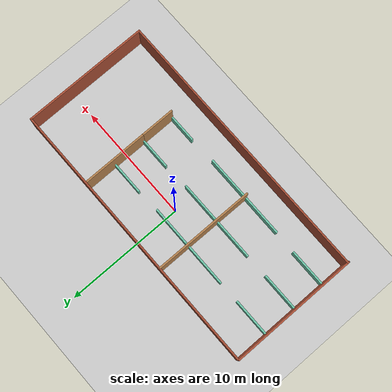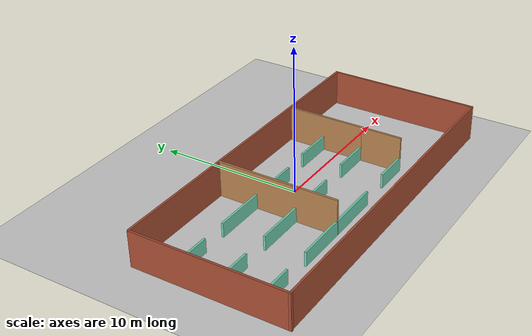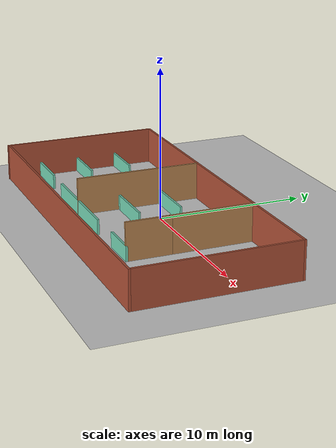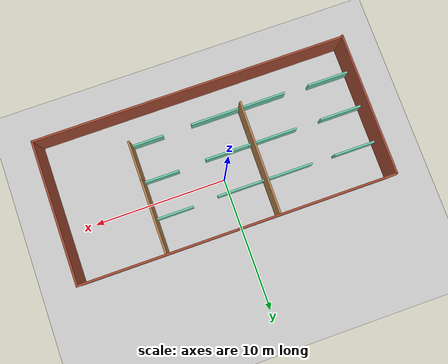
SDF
<sdf version="1.6">
 <world name="default">
  <model name="ground_plane">
   <static>1</static>
   <link name="link">
    <collision name="collision">
     <geometry><plane><normal>0 0 1</normal><size>100 100</size></plane></geometry>
     <surface><friction><ode><mu>100</mu><mu2>50</mu2></ode></friction></surface>
    </collision>
    <visual name="visual">
     <cast_shadows>0</cast_shadows>
     <geometry><plane><normal>0 0 1</normal><size>100 100</size></plane></geometry>
     <material>
      <script><uri>file://media/materials/scripts/gazebo.material</uri><name>Gazebo/Grey</name></script>
     </material>
    </visual>
   </link>
  </model>
  <model name="restaurants">
   <link name="Wall_17">
    <pose>5.31564 2.50892 0 0 -0 1.57072</pose>
    <visual name="Wall_17_Visual">
     <pose>0 0 1.25 0 -0 0</pose>
     <geometry><box><size>5.45915 0.15 2.5</size></box></geometry>
     <material>
      <script><uri>file://media/materials/scripts/gazebo.material</uri><name>Gazebo/Wood</name></script>
      <ambient>1 1 1 1</ambient>
      <shader type="pixel"/>
      <diffuse>1 1 1 1</diffuse>
      <specular>0.2 0.2 0.2 1</specular>
      <emissive>0 0 0 1</emissive>
     </material>
     <meta><layer>0</layer></meta>
    </visual>
    <collision name="Wall_17_Collision">
     <pose>0 0 1.25 0 -0 0</pose>
     <geometry><box><size>5.45915 0.15 2.5</size></box></geometry>
     <surface>
      <friction>
       <ode><mu>1</mu><mu2>1</mu2><fdir1>0 0 0</fdir1><slip1>0</slip1><slip2>0</slip2></ode>
       <torsional>
        <coefficient>1</coefficient>
        <patch_radius>0</patch_radius>
        <surface_radius>0</surface_radius>
        <use_patch_radius>1</use_patch_radius>
        <ode><slip>0</slip></ode>
       </torsional>
      </friction>
      <bounce><restitution_coefficient>0</restitution_coefficient><threshold>1e+06</threshold></bounce>
      <contact>
       <collide_without_contact>0</collide_without_contact>
       <collide_without_contact_bitmask>1</collide_without_contact_bitmask>
       <collide_bitmask>1</collide_bitmask>
       <ode>
        <soft_cfm>0</soft_cfm>
        <soft_erp>0.2</soft_erp>
        <kp>1e+13</kp>
        <kd>1</kd>
        <max_vel>0.01</max_vel>
        <min_depth>0</min_depth>
       </ode>
       <bullet>
        <split_impulse>1</split_impulse>
        <split_impulse_penetration_threshold>-0.01</split_impulse_penetration_threshold>
        <soft_cfm>0</soft_cfm>
        <soft_erp>0.2</soft_erp>
        <kp>1e+13</kp>
        <kd>1</kd>
       </bullet>
      </contact>
     </surface>
    </collision>
   </link>
   <link name="Wall_19">
    <pose>5.31545 -1.57066 0 0 0 -1.5708</pose>
    <visual name="Wall_19_Visual">
     <pose>0 0 1.25 0 -0 0</pose>
     <geometry><box><size>3 0.15 2.5</size></box></geometry>
     <material>
      <script><uri>file://media/materials/scripts/gazebo.material</uri><name>Gazebo/Wood</name></script>
      <ambient>1 1 1 1</ambient>
      <shader type="pixel"/>
      <diffuse>1 1 1 1</diffuse>
      <specular>0.2 0.2 0.2 1</specular>
      <emissive>0 0 0 1</emissive>
     </material>
     <meta><layer>0</layer></meta>
    </visual>
    <collision name="Wall_19_Collision">
     <pose>0 0 1.25 0 -0 0</pose>
     <geometry><box><size>3 0.15 2.5</size></box></geometry>
     <surface>
      <friction>
       <ode><mu>1</mu><mu2>1</mu2><fdir1>0 0 0</fdir1><slip1>0</slip1><slip2>0</slip2></ode>
       <torsional>
        <coefficient>1</coefficient>
        <patch_radius>0</patch_radius>
        <surface_radius>0</surface_radius>
        <use_patch_radius>1</use_patch_radius>
        <ode><slip>0</slip></ode>
       </torsional>
      </friction>
      <bounce><restitution_coefficient>0</restitution_coefficient><threshold>1e+06</threshold></bounce>
      <contact>
       <collide_without_contact>0</collide_without_contact>
       <collide_without_contact_bitmask>1</collide_without_contact_bitmask>
       <collide_bitmask>1</collide_bitmask>
       <ode>
        <soft_cfm>0</soft_cfm>
        <soft_erp>0.2</soft_erp>
        <kp>1e+13</kp>
        <kd>1</kd>
        <max_vel>0.01</max_vel>
        <min_depth>0</min_depth>
       </ode>
       <bullet>
        <split_impulse>1</split_impulse>
        <split_impulse_penetration_threshold>-0.01</split_impulse_penetration_threshold>
        <soft_cfm>0</soft_cfm>
        <soft_erp>0.2</soft_erp>
        <kp>1e+13</kp>
        <kd>1</kd>
       </bullet>
      </contact>
     </surface>
    </collision>
   </link>
   <link name="Wall_4">
    <pose>0.042334 5.32675 0 0 -0 0</pose>
    <visual name="Wall_4_Visual">
     <pose>0 0 1.25 0 -0 0</pose>
     <geometry><box><size>23.5 0.15 2.5</size></box></geometry>
     <material>
      <script><uri>file://media/materials/scripts/gazebo.material</uri><name>Gazebo/Bricks</name></script>
      <ambient>1 1 1 1</ambient>
      <shader type="pixel"/>
      <diffuse>1 1 1 1</diffuse>
      <specular>0.2 0.2 0.2 1</specular>
      <emissive>0 0 0 1</emissive>
     </material>
     <meta><layer>0</layer></meta>
    </visual>
    <collision name="Wall_4_Collision">
     <pose>0 0 1.25 0 -0 0</pose>
     <geometry><box><size>23.5 0.15 2.5</size></box></geometry>
     <surface>
      <friction>
       <ode><mu>1</mu><mu2>1</mu2><fdir1>0 0 0</fdir1><slip1>0</slip1><slip2>0</slip2></ode>
       <torsional>
        <coefficient>1</coefficient>
        <patch_radius>0</patch_radius>
        <surface_radius>0</surface_radius>
        <use_patch_radius>1</use_patch_radius>
        <ode><slip>0</slip></ode>
       </torsional>
      </friction>
      <bounce><restitution_coefficient>0</restitution_coefficient><threshold>1e+06</threshold></bounce>
      <contact>
       <collide_without_contact>0</collide_without_contact>
       <collide_without_contact_bitmask>1</collide_without_contact_bitmask>
       <collide_bitmask>1</collide_bitmask>
       <ode>
        <soft_cfm>0</soft_cfm>
        <soft_erp>0.2</soft_erp>
        <kp>1e+13</kp>
        <kd>1</kd>
        <max_vel>0.01</max_vel>
        <min_depth>0</min_depth>
       </ode>
       <bullet>
        <split_impulse>1</split_impulse>
        <split_impulse_penetration_threshold>-0.01</split_impulse_penetration_threshold>
        <soft_cfm>0</soft_cfm>
        <soft_erp>0.2</soft_erp>
        <kp>1e+13</kp>
        <kd>1</kd>
       </bullet>
      </contact>
     </surface>
    </collision>
   </link>
   <link name="Wall_48">
    <pose>-3.08222 1.07627 0 0 0 -1.57567</pose>
    <visual name="Wall_48_Visual">
     <pose>0 0 1.25 0 -0 0</pose>
     <geometry><box><size>8.5 0.15 2.5</size></box></geometry>
     <material>
      <script><uri>file://media/materials/scripts/gazebo.material</uri><name>Gazebo/Wood</name></script>
      <ambient>1 1 1 1</ambient>
      <shader type="pixel"/>
      <diffuse>1 1 1 1</diffuse>
      <specular>0.2 0.2 0.2 1</specular>
      <emissive>0 0 0 1</emissive>
     </material>
     <meta><layer>0</layer></meta>
    </visual>
    <collision name="Wall_48_Collision">
     <pose>0 0 1.25 0 -0 0</pose>
     <geometry><box><size>8.5 0.15 2.5</size></box></geometry>
     <surface>
      <friction>
       <ode><mu>1</mu><mu2>1</mu2><fdir1>0 0 0</fdir1><slip1>0</slip1><slip2>0</slip2></ode>
       <torsional>
        <coefficient>1</coefficient>
        <patch_radius>0</patch_radius>
        <surface_radius>0</surface_radius>
        <use_patch_radius>1</use_patch_radius>
        <ode><slip>0</slip></ode>
       </torsional>
      </friction>
      <bounce><restitution_coefficient>0</restitution_coefficient><threshold>1e+06</threshold></bounce>
      <contact>
       <collide_without_contact>0</collide_without_contact>
       <collide_without_contact_bitmask>1</collide_without_contact_bitmask>
       <collide_bitmask>1</collide_bitmask>
       <ode>
        <soft_cfm>0</soft_cfm>
        <soft_erp>0.2</soft_erp>
        <kp>1e+13</kp>
        <kd>1</kd>
        <max_vel>0.01</max_vel>
        <min_depth>0</min_depth>
       </ode>
       <bullet>
        <split_impulse>1</split_impulse>
        <split_impulse_penetration_threshold>-0.01</split_impulse_penetration_threshold>
        <soft_cfm>0</soft_cfm>
        <soft_erp>0.2</soft_erp>
        <kp>1e+13</kp>
        <kd>1</kd>
       </bullet>
      </contact>
     </surface>
    </collision>
   </link>
   <link name="Wall_6">
    <pose>11.7173 0.026751 0 0 0 -1.5708</pose>
    <visual name="Wall_6_Visual">
     <pose>0 0 1.25 0 -0 0</pose>
     <geometry><box><size>10.75 0.15 2.5</size></box></geometry>
     <material>
      <script><uri>file://media/materials/scripts/gazebo.material</uri><name>Gazebo/Bricks</name></script>
      <ambient>1 1 1 1</ambient>
      <shader type="pixel"/>
      <diffuse>1 1 1 1</diffuse>
      <specular>0.2 0.2 0.2 1</specular>
      <emissive>0 0 0 1</emissive>
     </material>
     <meta><layer>0</layer></meta>
    </visual>
    <collision name="Wall_6_Collision">
     <pose>0 0 1.25 0 -0 0</pose>
     <geometry><box><size>10.75 0.15 2.5</size></box></geometry>
     <surface>
      <friction>
       <ode><mu>1</mu><mu2>1</mu2><fdir1>0 0 0</fdir1><slip1>0</slip1><slip2>0</slip2></ode>
       <torsional>
        <coefficient>1</coefficient>
        <patch_radius>0</patch_radius>
        <surface_radius>0</surface_radius>
        <use_patch_radius>1</use_patch_radius>
        <ode><slip>0</slip></ode>
       </torsional>
      </friction>
      <bounce><restitution_coefficient>0</restitution_coefficient><threshold>1e+06</threshold></bounce>
      <contact>
       <collide_without_contact>0</collide_without_contact>
       <collide_without_contact_bitmask>1</collide_without_contact_bitmask>
       <collide_bitmask>1</collide_bitmask>
       <ode>
        <soft_cfm>0</soft_cfm>
        <soft_erp>0.2</soft_erp>
        <kp>1e+13</kp>
        <kd>1</kd>
        <max_vel>0.01</max_vel>
        <min_depth>0</min_depth>
       </ode>
       <bullet>
        <split_impulse>1</split_impulse>
        <split_impulse_penetration_threshold>-0.01</split_impulse_penetration_threshold>
        <soft_cfm>0</soft_cfm>
        <soft_erp>0.2</soft_erp>
        <kp>1e+13</kp>
        <kd>1</kd>
       </bullet>
      </contact>
     </surface>
    </collision>
   </link>
   <link name="Wall_66">
    <pose>-10.1176 2.54034 0 0 -0 0</pose>
    <visual name="Wall_66_Visual">
     <pose>0 0 0.5 0 -0 0</pose>
     <geometry><box><size>3.25 0.15 1</size></box></geometry>
     <material>
      <script><uri>file://media/materials/scripts/gazebo.material</uri><name>Gazebo/Grey</name></script>
      <ambient>0.435294 0.796078 0.67451 1</ambient>
      <shader type="pixel"/>
      <diffuse>0.7 0.7 0.7 1</diffuse>
      <specular>0.01 0.01 0.01 1</specular>
      <emissive>0 0 0 1</emissive>
     </material>
     <meta><layer>0</layer></meta>
    </visual>
    <collision name="Wall_66_Collision">
     <pose>0 0 0.5 0 -0 0</pose>
     <geometry><box><size>3.25 0.15 1</size></box></geometry>
     <surface>
      <friction>
       <ode><mu>1</mu><mu2>1</mu2><fdir1>0 0 0</fdir1><slip1>0</slip1><slip2>0</slip2></ode>
       <torsional>
        <coefficient>1</coefficient>
        <patch_radius>0</patch_radius>
        <surface_radius>0</surface_radius>
        <use_patch_radius>1</use_patch_radius>
        <ode><slip>0</slip></ode>
       </torsional>
      </friction>
      <bounce><restitution_coefficient>0</restitution_coefficient><threshold>1e+06</threshold></bounce>
      <contact>
       <collide_without_contact>0</collide_without_contact>
       <collide_without_contact_bitmask>1</collide_without_contact_bitmask>
       <collide_bitmask>1</collide_bitmask>
       <ode>
        <soft_cfm>0</soft_cfm>
        <soft_erp>0.2</soft_erp>
        <kp>1e+13</kp>
        <kd>1</kd>
        <max_vel>0.01</max_vel>
        <min_depth>0</min_depth>
       </ode>
       <bullet>
        <split_impulse>1</split_impulse>
        <split_impulse_penetration_threshold>-0.01</split_impulse_penetration_threshold>
        <soft_cfm>0</soft_cfm>
        <soft_erp>0.2</soft_erp>
        <kp>1e+13</kp>
        <kd>1</kd>
       </bullet>
      </contact>
     </surface>
    </collision>
   </link>
   <link name="Wall_69">
    <pose>-10.1046 -0.300662 0 0 -0 0</pose>
    <visual name="Wall_69_Visual">
     <pose>0 0 0.5 0 -0 0</pose>
     <geometry><box><size>3.25 0.15 1</size></box></geometry>
     <material>
      <script><uri>file://media/materials/scripts/gazebo.material</uri><name>Gazebo/Grey</name></script>
      <ambient>0.435294 0.796078 0.67451 1</ambient>
      <shader type="pixel"/>
      <diffuse>0.7 0.7 0.7 1</diffuse>
      <specular>0.01 0.01 0.01 1</specular>
      <emissive>0 0 0 1</emissive>
     </material>
     <meta><layer>0</layer></meta>
    </visual>
    <collision name="Wall_69_Collision">
     <pose>0 0 0.5 0 -0 0</pose>
     <geometry><box><size>3.25 0.15 1</size></box></geometry>
     <surface>
      <friction>
       <ode><mu>1</mu><mu2>1</mu2><fdir1>0 0 0</fdir1><slip1>0</slip1><slip2>0</slip2></ode>
       <torsional>
        <coefficient>1</coefficient>
        <patch_radius>0</patch_radius>
        <surface_radius>0</surface_radius>
        <use_patch_radius>1</use_patch_radius>
        <ode><slip>0</slip></ode>
       </torsional>
      </friction>
      <bounce><restitution_coefficient>0</restitution_coefficient><threshold>1e+06</threshold></bounce>
      <contact>
       <collide_without_contact>0</collide_without_contact>
       <collide_without_contact_bitmask>1</collide_without_contact_bitmask>
       <collide_bitmask>1</collide_bitmask>
       <ode>
        <soft_cfm>0</soft_cfm>
        <soft_erp>0.2</soft_erp>
        <kp>1e+13</kp>
        <kd>1</kd>
        <max_vel>0.01</max_vel>
        <min_depth>0</min_depth>
       </ode>
       <bullet>
        <split_impulse>1</split_impulse>
        <split_impulse_penetration_threshold>-0.01</split_impulse_penetration_threshold>
        <soft_cfm>0</soft_cfm>
        <soft_erp>0.2</soft_erp>
        <kp>1e+13</kp>
        <kd>1</kd>
       </bullet>
      </contact>
     </surface>
    </collision>
   </link>
   <link name="Wall_7">
    <pose>0 -5.27325 0 0 -0 3.14159</pose>
    <visual name="Wall_7_Visual">
     <pose>0 0 1.25 0 -0 0</pose>
     <geometry><box><size>23.5847 0.15 2.5</size></box></geometry>
     <material>
      <script><uri>file://media/materials/scripts/gazebo.material</uri><name>Gazebo/Bricks</name></script>
      <ambient>1 1 1 1</ambient>
      <shader type="pixel"/>
      <diffuse>1 1 1 1</diffuse>
      <specular>0.2 0.2 0.2 1</specular>
      <emissive>0 0 0 1</emissive>
     </material>
     <meta><layer>0</layer></meta>
    </visual>
    <collision name="Wall_7_Collision">
     <pose>0 0 1.25 0 -0 0</pose>
     <geometry><box><size>23.5847 0.15 2.5</size></box></geometry>
     <surface>
      <friction>
       <ode><mu>1</mu><mu2>1</mu2><fdir1>0 0 0</fdir1><slip1>0</slip1><slip2>0</slip2></ode>
       <torsional>
        <coefficient>1</coefficient>
        <patch_radius>0</patch_radius>
        <surface_radius>0</surface_radius>
        <use_patch_radius>1</use_patch_radius>
        <ode><slip>0</slip></ode>
       </torsional>
      </friction>
      <bounce><restitution_coefficient>0</restitution_coefficient><threshold>1e+06</threshold></bounce>
      <contact>
       <collide_without_contact>0</collide_without_contact>
       <collide_without_contact_bitmask>1</collide_without_contact_bitmask>
       <collide_bitmask>1</collide_bitmask>
       <ode>
        <soft_cfm>0</soft_cfm>
        <soft_erp>0.2</soft_erp>
        <kp>1e+13</kp>
        <kd>1</kd>
        <max_vel>0.01</max_vel>
        <min_depth>0</min_depth>
       </ode>
       <bullet>
        <split_impulse>1</split_impulse>
        <split_impulse_penetration_threshold>-0.01</split_impulse_penetration_threshold>
        <soft_cfm>0</soft_cfm>
        <soft_erp>0.2</soft_erp>
        <kp>1e+13</kp>
        <kd>1</kd>
       </bullet>
      </contact>
     </surface>
    </collision>
   </link>
   <link name="Wall_71">
    <pose>-10.1406 -3.04466 0 0 -0 0</pose>
    <visual name="Wall_71_Visual">
     <pose>0 0 0.5 0 -0 0</pose>
     <geometry><box><size>3.25 0.15 1</size></box></geometry>
     <material>
      <script><uri>file://media/materials/scripts/gazebo.material</uri><name>Gazebo/Grey</name></script>
      <ambient>0.435294 0.796078 0.67451 1</ambient>
      <shader type="pixel"/>
      <diffuse>0.7 0.7 0.7 1</diffuse>
      <specular>0.01 0.01 0.01 1</specular>
      <emissive>0 0 0 1</emissive>
     </material>
     <meta><layer>0</layer></meta>
    </visual>
    <collision name="Wall_71_Collision">
     <pose>0 0 0.5 0 -0 0</pose>
     <geometry><box><size>3.25 0.15 1</size></box></geometry>
     <surface>
      <friction>
       <ode><mu>1</mu><mu2>1</mu2><fdir1>0 0 0</fdir1><slip1>0</slip1><slip2>0</slip2></ode>
       <torsional>
        <coefficient>1</coefficient>
        <patch_radius>0</patch_radius>
        <surface_radius>0</surface_radius>
        <use_patch_radius>1</use_patch_radius>
        <ode><slip>0</slip></ode>
       </torsional>
      </friction>
      <bounce><restitution_coefficient>0</restitution_coefficient><threshold>1e+06</threshold></bounce>
      <contact>
       <collide_without_contact>0</collide_without_contact>
       <collide_without_contact_bitmask>1</collide_without_contact_bitmask>
       <collide_bitmask>1</collide_bitmask>
       <ode>
        <soft_cfm>0</soft_cfm>
        <soft_erp>0.2</soft_erp>
        <kp>1e+13</kp>
        <kd>1</kd>
        <max_vel>0.01</max_vel>
        <min_depth>0</min_depth>
       </ode>
       <bullet>
        <split_impulse>1</split_impulse>
        <split_impulse_penetration_threshold>-0.01</split_impulse_penetration_threshold>
        <soft_cfm>0</soft_cfm>
        <soft_erp>0.2</soft_erp>
        <kp>1e+13</kp>
        <kd>1</kd>
       </bullet>
      </contact>
     </surface>
    </collision>
   </link>
   <link name="Wall_73">
    <pose>-4.76086 2.55834 0 0 -0 0</pose>
    <visual name="Wall_73_Visual">
     <pose>0 0 0.5 0 -0 0</pose>
     <geometry><box><size>3.98261 0.15 1</size></box></geometry>
     <material>
      <script><uri>file://media/materials/scripts/gazebo.material</uri><name>Gazebo/Grey</name></script>
      <ambient>0.435294 0.796078 0.67451 1</ambient>
      <shader type="pixel"/>
      <diffuse>0.7 0.7 0.7 1</diffuse>
      <specular>0.01 0.01 0.01 1</specular>
      <emissive>0 0 0 1</emissive>
     </material>
     <meta><layer>0</layer></meta>
    </visual>
    <collision name="Wall_73_Collision">
     <pose>0 0 0.5 0 -0 0</pose>
     <geometry><box><size>3.98261 0.15 1</size></box></geometry>
     <surface>
      <friction>
       <ode><mu>1</mu><mu2>1</mu2><fdir1>0 0 0</fdir1><slip1>0</slip1><slip2>0</slip2></ode>
       <torsional>
        <coefficient>1</coefficient>
        <patch_radius>0</patch_radius>
        <surface_radius>0</surface_radius>
        <use_patch_radius>1</use_patch_radius>
        <ode><slip>0</slip></ode>
       </torsional>
      </friction>
      <bounce><restitution_coefficient>0</restitution_coefficient><threshold>1e+06</threshold></bounce>
      <contact>
       <collide_without_contact>0</collide_without_contact>
       <collide_without_contact_bitmask>1</collide_without_contact_bitmask>
       <collide_bitmask>1</collide_bitmask>
       <ode>
        <soft_cfm>0</soft_cfm>
        <soft_erp>0.2</soft_erp>
        <kp>1e+13</kp>
        <kd>1</kd>
        <max_vel>0.01</max_vel>
        <min_depth>0</min_depth>
       </ode>
       <bullet>
        <split_impulse>1</split_impulse>
        <split_impulse_penetration_threshold>-0.01</split_impulse_penetration_threshold>
        <soft_cfm>0</soft_cfm>
        <soft_erp>0.2</soft_erp>
        <kp>1e+13</kp>
        <kd>1</kd>
       </bullet>
      </contact>
     </surface>
    </collision>
   </link>
   <link name="Wall_75">
    <pose>-4.69255 -0.273662 0 0 -0 0</pose>
    <visual name="Wall_75_Visual">
     <pose>0 0 0.5 0 -0 0</pose>
     <geometry><box><size>3.75 0.15 1</size></box></geometry>
     <material>
      <script><uri>file://media/materials/scripts/gazebo.material</uri><name>Gazebo/Grey</name></script>
      <ambient>0.435294 0.796078 0.67451 1</ambient>
      <shader type="pixel"/>
      <diffuse>0.7 0.7 0.7 1</diffuse>
      <specular>0.01 0.01 0.01 1</specular>
      <emissive>0 0 0 1</emissive>
     </material>
     <meta><layer>0</layer></meta>
    </visual>
    <collision name="Wall_75_Collision">
     <pose>0 0 0.5 0 -0 0</pose>
     <geometry><box><size>3.75 0.15 1</size></box></geometry>
     <surface>
      <friction>
       <ode><mu>1</mu><mu2>1</mu2><fdir1>0 0 0</fdir1><slip1>0</slip1><slip2>0</slip2></ode>
       <torsional>
        <coefficient>1</coefficient>
        <patch_radius>0</patch_radius>
        <surface_radius>0</surface_radius>
        <use_patch_radius>1</use_patch_radius>
        <ode><slip>0</slip></ode>
       </torsional>
      </friction>
      <bounce><restitution_coefficient>0</restitution_coefficient><threshold>1e+06</threshold></bounce>
      <contact>
       <collide_without_contact>0</collide_without_contact>
       <collide_without_contact_bitmask>1</collide_without_contact_bitmask>
       <collide_bitmask>1</collide_bitmask>
       <ode>
        <soft_cfm>0</soft_cfm>
        <soft_erp>0.2</soft_erp>
        <kp>1e+13</kp>
        <kd>1</kd>
        <max_vel>0.01</max_vel>
        <min_depth>0</min_depth>
       </ode>
       <bullet>
        <split_impulse>1</split_impulse>
        <split_impulse_penetration_threshold>-0.01</split_impulse_penetration_threshold>
        <soft_cfm>0</soft_cfm>
        <soft_erp>0.2</soft_erp>
        <kp>1e+13</kp>
        <kd>1</kd>
       </bullet>
      </contact>
     </surface>
    </collision>
   </link>
   <link name="Wall_79">
    <pose>-4.84555 -3.09866 0 0 -0 3.14159</pose>
    <visual name="Wall_79_Visual">
     <pose>0 0 0.5 0 -0 0</pose>
     <geometry><box><size>3.6359 0.15 1</size></box></geometry>
     <material>
      <script><uri>file://media/materials/scripts/gazebo.material</uri><name>Gazebo/Grey</name></script>
      <ambient>0.435294 0.796078 0.67451 1</ambient>
      <shader type="pixel"/>
      <diffuse>0.7 0.7 0.7 1</diffuse>
      <specular>0.01 0.01 0.01 1</specular>
      <emissive>0 0 0 1</emissive>
     </material>
     <meta><layer>0</layer></meta>
    </visual>
    <collision name="Wall_79_Collision">
     <pose>0 0 0.5 0 -0 0</pose>
     <geometry><box><size>3.6359 0.15 1</size></box></geometry>
     <surface>
      <friction>
       <ode><mu>1</mu><mu2>1</mu2><fdir1>0 0 0</fdir1><slip1>0</slip1><slip2>0</slip2></ode>
       <torsional>
        <coefficient>1</coefficient>
        <patch_radius>0</patch_radius>
        <surface_radius>0</surface_radius>
        <use_patch_radius>1</use_patch_radius>
        <ode><slip>0</slip></ode>
       </torsional>
      </friction>
      <bounce><restitution_coefficient>0</restitution_coefficient><threshold>1e+06</threshold></bounce>
      <contact>
       <collide_without_contact>0</collide_without_contact>
       <collide_without_contact_bitmask>1</collide_without_contact_bitmask>
       <collide_bitmask>1</collide_bitmask>
       <ode>
        <soft_cfm>0</soft_cfm>
        <soft_erp>0.2</soft_erp>
        <kp>1e+13</kp>
        <kd>1</kd>
        <max_vel>0.01</max_vel>
        <min_depth>0</min_depth>
       </ode>
       <bullet>
        <split_impulse>1</split_impulse>
        <split_impulse_penetration_threshold>-0.01</split_impulse_penetration_threshold>
        <soft_cfm>0</soft_cfm>
        <soft_erp>0.2</soft_erp>
        <kp>1e+13</kp>
        <kd>1</kd>
       </bullet>
      </contact>
     </surface>
    </collision>
   </link>
   <link name="Wall_8">
    <pose>-11.7173 -0.026751 0 0 -0 1.5708</pose>
    <visual name="Wall_8_Visual">
     <pose>0 0 1.25 0 -0 0</pose>
     <geometry><box><size>10.75 0.15 2.5</size></box></geometry>
     <material>
      <script><uri>file://media/materials/scripts/gazebo.material</uri><name>Gazebo/Bricks</name></script>
      <ambient>1 1 1 1</ambient>
      <shader type="pixel"/>
      <diffuse>1 1 1 1</diffuse>
      <specular>0.2 0.2 0.2 1</specular>
      <emissive>0 0 0 1</emissive>
     </material>
     <meta><layer>0</layer></meta>
    </visual>
    <collision name="Wall_8_Collision">
     <pose>0 0 1.25 0 -0 0</pose>
     <geometry><box><size>10.75 0.15 2.5</size></box></geometry>
     <surface>
      <friction>
       <ode><mu>1</mu><mu2>1</mu2><fdir1>0 0 0</fdir1><slip1>0</slip1><slip2>0</slip2></ode>
       <torsional>
        <coefficient>1</coefficient>
        <patch_radius>0</patch_radius>
        <surface_radius>0</surface_radius>
        <use_patch_radius>1</use_patch_radius>
        <ode><slip>0</slip></ode>
       </torsional>
      </friction>
      <bounce><restitution_coefficient>0</restitution_coefficient><threshold>1e+06</threshold></bounce>
      <contact>
       <collide_without_contact>0</collide_without_contact>
       <collide_without_contact_bitmask>1</collide_without_contact_bitmask>
       <collide_bitmask>1</collide_bitmask>
       <ode>
        <soft_cfm>0</soft_cfm>
        <soft_erp>0.2</soft_erp>
        <kp>1e+13</kp>
        <kd>1</kd>
        <max_vel>0.01</max_vel>
        <min_depth>0</min_depth>
       </ode>
       <bullet>
        <split_impulse>1</split_impulse>
        <split_impulse_penetration_threshold>-0.01</split_impulse_penetration_threshold>
        <soft_cfm>0</soft_cfm>
        <soft_erp>0.2</soft_erp>
        <kp>1e+13</kp>
        <kd>1</kd>
       </bullet>
      </contact>
     </surface>
    </collision>
   </link>
   <link name="Wall_81">
    <pose>-1.16955 2.55834 0 0 -0 0</pose>
    <visual name="Wall_81_Visual">
     <pose>0 0 0.5 0 -0 0</pose>
     <geometry><box><size>3.5 0.15 1</size></box></geometry>
     <material>
      <script><uri>file://media/materials/scripts/gazebo.material</uri><name>Gazebo/Grey</name></script>
      <ambient>0.435294 0.796078 0.67451 1</ambient>
      <shader type="pixel"/>
      <diffuse>0.7 0.7 0.7 1</diffuse>
      <specular>0.01 0.01 0.01 1</specular>
      <emissive>0 0 0 1</emissive>
     </material>
     <meta><layer>0</layer></meta>
    </visual>
    <collision name="Wall_81_Collision">
     <pose>0 0 0.5 0 -0 0</pose>
     <geometry><box><size>3.5 0.15 1</size></box></geometry>
     <surface>
      <friction>
       <ode><mu>1</mu><mu2>1</mu2><fdir1>0 0 0</fdir1><slip1>0</slip1><slip2>0</slip2></ode>
       <torsional>
        <coefficient>1</coefficient>
        <patch_radius>0</patch_radius>
        <surface_radius>0</surface_radius>
        <use_patch_radius>1</use_patch_radius>
        <ode><slip>0</slip></ode>
       </torsional>
      </friction>
      <bounce><restitution_coefficient>0</restitution_coefficient><threshold>1e+06</threshold></bounce>
      <contact>
       <collide_without_contact>0</collide_without_contact>
       <collide_without_contact_bitmask>1</collide_without_contact_bitmask>
       <collide_bitmask>1</collide_bitmask>
       <ode>
        <soft_cfm>0</soft_cfm>
        <soft_erp>0.2</soft_erp>
        <kp>1e+13</kp>
        <kd>1</kd>
        <max_vel>0.01</max_vel>
        <min_depth>0</min_depth>
       </ode>
       <bullet>
        <split_impulse>1</split_impulse>
        <split_impulse_penetration_threshold>-0.01</split_impulse_penetration_threshold>
        <soft_cfm>0</soft_cfm>
        <soft_erp>0.2</soft_erp>
        <kp>1e+13</kp>
        <kd>1</kd>
       </bullet>
      </contact>
     </surface>
    </collision>
   </link>
   <link name="Wall_83">
    <pose>-1.21755 -0.273662 0 0 -0 0</pose>
    <visual name="Wall_83_Visual">
     <pose>0 0 0.5 0 -0 0</pose>
     <geometry><box><size>3.5 0.15 1</size></box></geometry>
     <material>
      <script><uri>file://media/materials/scripts/gazebo.material</uri><name>Gazebo/Grey</name></script>
      <ambient>0.435294 0.796078 0.67451 1</ambient>
      <shader type="pixel"/>
      <diffuse>0.7 0.7 0.7 1</diffuse>
      <specular>0.01 0.01 0.01 1</specular>
      <emissive>0 0 0 1</emissive>
     </material>
     <meta><layer>0</layer></meta>
    </visual>
    <collision name="Wall_83_Collision">
     <pose>0 0 0.5 0 -0 0</pose>
     <geometry><box><size>3.5 0.15 1</size></box></geometry>
     <surface>
      <friction>
       <ode><mu>1</mu><mu2>1</mu2><fdir1>0 0 0</fdir1><slip1>0</slip1><slip2>0</slip2></ode>
       <torsional>
        <coefficient>1</coefficient>
        <patch_radius>0</patch_radius>
        <surface_radius>0</surface_radius>
        <use_patch_radius>1</use_patch_radius>
        <ode><slip>0</slip></ode>
       </torsional>
      </friction>
      <bounce><restitution_coefficient>0</restitution_coefficient><threshold>1e+06</threshold></bounce>
      <contact>
       <collide_without_contact>0</collide_without_contact>
       <collide_without_contact_bitmask>1</collide_without_contact_bitmask>
       <collide_bitmask>1</collide_bitmask>
       <ode>
        <soft_cfm>0</soft_cfm>
        <soft_erp>0.2</soft_erp>
        <kp>1e+13</kp>
        <kd>1</kd>
        <max_vel>0.01</max_vel>
        <min_depth>0</min_depth>
       </ode>
       <bullet>
        <split_impulse>1</split_impulse>
        <split_impulse_penetration_threshold>-0.01</split_impulse_penetration_threshold>
        <soft_cfm>0</soft_cfm>
        <soft_erp>0.2</soft_erp>
        <kp>1e+13</kp>
        <kd>1</kd>
       </bullet>
      </contact>
     </surface>
    </collision>
   </link>
   <link name="Wall_85">
    <pose>-1.24555 -3.09866 0 0 -0 0</pose>
    <visual name="Wall_85_Visual">
     <pose>0 0 0.5 0 -0 0</pose>
     <geometry><box><size>3.8641 0.15 1</size></box></geometry>
     <material>
      <script><uri>file://media/materials/scripts/gazebo.material</uri><name>Gazebo/Grey</name></script>
      <ambient>0.435294 0.796078 0.67451 1</ambient>
      <shader type="pixel"/>
      <diffuse>0.7 0.7 0.7 1</diffuse>
      <specular>0.01 0.01 0.01 1</specular>
      <emissive>0 0 0 1</emissive>
     </material>
     <meta><layer>0</layer></meta>
    </visual>
    <collision name="Wall_85_Collision">
     <pose>0 0 0.5 0 -0 0</pose>
     <geometry><box><size>3.8641 0.15 1</size></box></geometry>
     <surface>
      <friction>
       <ode><mu>1</mu><mu2>1</mu2><fdir1>0 0 0</fdir1><slip1>0</slip1><slip2>0</slip2></ode>
       <torsional>
        <coefficient>1</coefficient>
        <patch_radius>0</patch_radius>
        <surface_radius>0</surface_radius>
        <use_patch_radius>1</use_patch_radius>
        <ode><slip>0</slip></ode>
       </torsional>
      </friction>
      <bounce><restitution_coefficient>0</restitution_coefficient><threshold>1e+06</threshold></bounce>
      <contact>
       <collide_without_contact>0</collide_without_contact>
       <collide_without_contact_bitmask>1</collide_without_contact_bitmask>
       <collide_bitmask>1</collide_bitmask>
       <ode>
        <soft_cfm>0</soft_cfm>
        <soft_erp>0.2</soft_erp>
        <kp>1e+13</kp>
        <kd>1</kd>
        <max_vel>0.01</max_vel>
        <min_depth>0</min_depth>
       </ode>
       <bullet>
        <split_impulse>1</split_impulse>
        <split_impulse_penetration_threshold>-0.01</split_impulse_penetration_threshold>
        <soft_cfm>0</soft_cfm>
        <soft_erp>0.2</soft_erp>
        <kp>1e+13</kp>
        <kd>1</kd>
       </bullet>
      </contact>
     </surface>
    </collision>
   </link>
   <link name="Wall_87">
    <pose>3.86945 2.67934 0 0 -0 0</pose>
    <visual name="Wall_87_Visual">
     <pose>0 0 0.5 0 -0 0</pose>
     <geometry><box><size>2.75 0.15 1</size></box></geometry>
     <material>
      <script><uri>file://media/materials/scripts/gazebo.material</uri><name>Gazebo/Grey</name></script>
      <ambient>0.435294 0.796078 0.67451 1</ambient>
      <shader type="pixel"/>
      <diffuse>0.7 0.7 0.7 1</diffuse>
      <specular>0.01 0.01 0.01 1</specular>
      <emissive>0 0 0 1</emissive>
     </material>
     <meta><layer>0</layer></meta>
    </visual>
    <collision name="Wall_87_Collision">
     <pose>0 0 0.5 0 -0 0</pose>
     <geometry><box><size>2.75 0.15 1</size></box></geometry>
     <surface>
      <friction>
       <ode><mu>1</mu><mu2>1</mu2><fdir1>0 0 0</fdir1><slip1>0</slip1><slip2>0</slip2></ode>
       <torsional>
        <coefficient>1</coefficient>
        <patch_radius>0</patch_radius>
        <surface_radius>0</surface_radius>
        <use_patch_radius>1</use_patch_radius>
        <ode><slip>0</slip></ode>
       </torsional>
      </friction>
      <bounce><restitution_coefficient>0</restitution_coefficient><threshold>1e+06</threshold></bounce>
      <contact>
       <collide_without_contact>0</collide_without_contact>
       <collide_without_contact_bitmask>1</collide_without_contact_bitmask>
       <collide_bitmask>1</collide_bitmask>
       <ode>
        <soft_cfm>0</soft_cfm>
        <soft_erp>0.2</soft_erp>
        <kp>1e+13</kp>
        <kd>1</kd>
        <max_vel>0.01</max_vel>
        <min_depth>0</min_depth>
       </ode>
       <bullet>
        <split_impulse>1</split_impulse>
        <split_impulse_penetration_threshold>-0.01</split_impulse_penetration_threshold>
        <soft_cfm>0</soft_cfm>
        <soft_erp>0.2</soft_erp>
        <kp>1e+13</kp>
        <kd>1</kd>
       </bullet>
      </contact>
     </surface>
    </collision>
   </link>
   <link name="Wall_92">
    <pose>4.01545 -0.145661 0 0 -0 3.14159</pose>
    <visual name="Wall_92_Visual">
     <pose>0 0 0.5 0 -0 0</pose>
     <geometry><box><size>2.75 0.15 1</size></box></geometry>
     <material>
      <script><uri>file://media/materials/scripts/gazebo.material</uri><name>Gazebo/Grey</name></script>
      <ambient>0.435294 0.796078 0.67451 1</ambient>
      <shader type="pixel"/>
      <diffuse>0.7 0.7 0.7 1</diffuse>
      <specular>0.01 0.01 0.01 1</specular>
      <emissive>0 0 0 1</emissive>
     </material>
     <meta><layer>0</layer></meta>
    </visual>
    <collision name="Wall_92_Collision">
     <pose>0 0 0.5 0 -0 0</pose>
     <geometry><box><size>2.75 0.15 1</size></box></geometry>
     <surface>
      <friction>
       <ode><mu>1</mu><mu2>1</mu2><fdir1>0 0 0</fdir1><slip1>0</slip1><slip2>0</slip2></ode>
       <torsional>
        <coefficient>1</coefficient>
        <patch_radius>0</patch_radius>
        <surface_radius>0</surface_radius>
        <use_patch_radius>1</use_patch_radius>
        <ode><slip>0</slip></ode>
       </torsional>
      </friction>
      <bounce><restitution_coefficient>0</restitution_coefficient><threshold>1e+06</threshold></bounce>
      <contact>
       <collide_without_contact>0</collide_without_contact>
       <collide_without_contact_bitmask>1</collide_without_contact_bitmask>
       <collide_bitmask>1</collide_bitmask>
       <ode>
        <soft_cfm>0</soft_cfm>
        <soft_erp>0.2</soft_erp>
        <kp>1e+13</kp>
        <kd>1</kd>
        <max_vel>0.01</max_vel>
        <min_depth>0</min_depth>
       </ode>
       <bullet>
        <split_impulse>1</split_impulse>
        <split_impulse_penetration_threshold>-0.01</split_impulse_penetration_threshold>
        <soft_cfm>0</soft_cfm>
        <soft_erp>0.2</soft_erp>
        <kp>1e+13</kp>
        <kd>1</kd>
       </bullet>
      </contact>
     </surface>
    </collision>
   </link>
   <link name="Wall_94">
    <pose>4.14045 -2.99566 0 0 -0 3.14159</pose>
    <visual name="Wall_94_Visual">
     <pose>0 0 0.5 0 -0 0</pose>
     <geometry><box><size>2.5 0.15 1</size></box></geometry>
     <material>
      <script><uri>file://media/materials/scripts/gazebo.material</uri><name>Gazebo/Grey</name></script>
      <ambient>0.435294 0.796078 0.67451 1</ambient>
      <shader type="pixel"/>
      <diffuse>0.7 0.7 0.7 1</diffuse>
      <specular>0.01 0.01 0.01 1</specular>
      <emissive>0 0 0 1</emissive>
     </material>
     <meta><layer>0</layer></meta>
    </visual>
    <collision name="Wall_94_Collision">
     <pose>0 0 0.5 0 -0 0</pose>
     <geometry><box><size>2.5 0.15 1</size></box></geometry>
     <surface>
      <friction>
       <ode><mu>1</mu><mu2>1</mu2><fdir1>0 0 0</fdir1><slip1>0</slip1><slip2>0</slip2></ode>
       <torsional>
        <coefficient>1</coefficient>
        <patch_radius>0</patch_radius>
        <surface_radius>0</surface_radius>
        <use_patch_radius>1</use_patch_radius>
        <ode><slip>0</slip></ode>
       </torsional>
      </friction>
      <bounce><restitution_coefficient>0</restitution_coefficient><threshold>1e+06</threshold></bounce>
      <contact>
       <collide_without_contact>0</collide_without_contact>
       <collide_without_contact_bitmask>1</collide_without_contact_bitmask>
       <collide_bitmask>1</collide_bitmask>
       <ode>
        <soft_cfm>0</soft_cfm>
        <soft_erp>0.2</soft_erp>
        <kp>1e+13</kp>
        <kd>1</kd>
        <max_vel>0.01</max_vel>
        <min_depth>0</min_depth>
       </ode>
       <bullet>
        <split_impulse>1</split_impulse>
        <split_impulse_penetration_threshold>-0.01</split_impulse_penetration_threshold>
        <soft_cfm>0</soft_cfm>
        <soft_erp>0.2</soft_erp>
        <kp>1e+13</kp>
        <kd>1</kd>
       </bullet>
      </contact>
     </surface>
    </collision>
   </link>
   <static>1</static>
   <pose>0.32728 -1.509 0 0 -0 0</pose>
  </model>
 </world>
</sdf>
